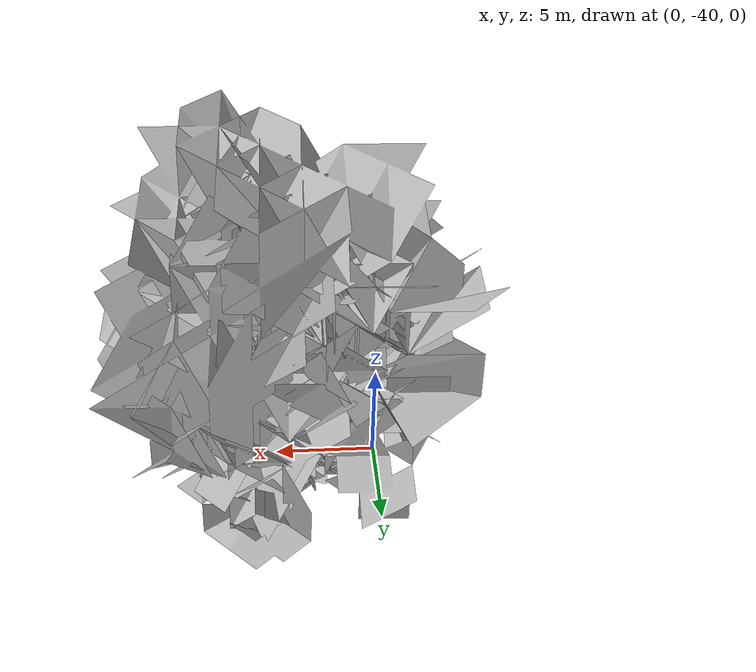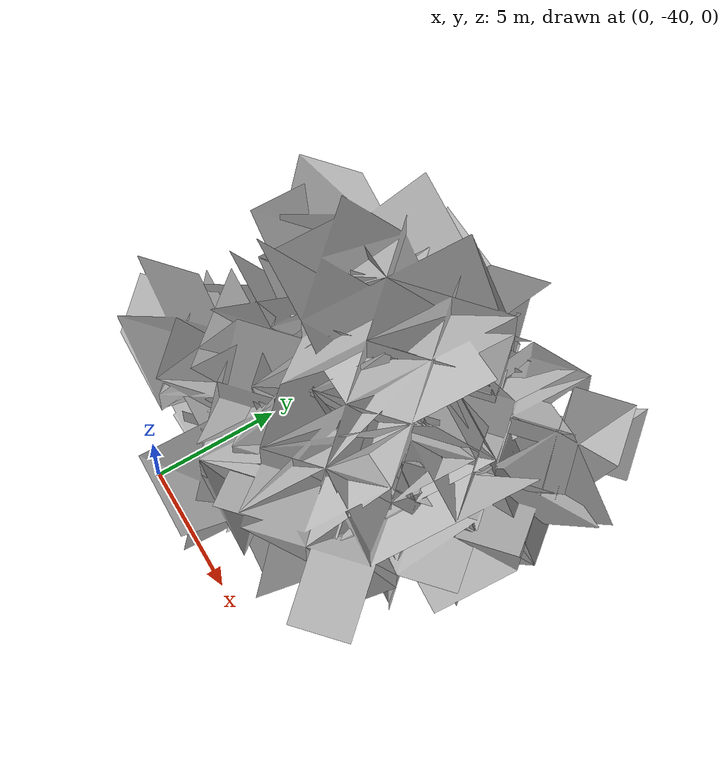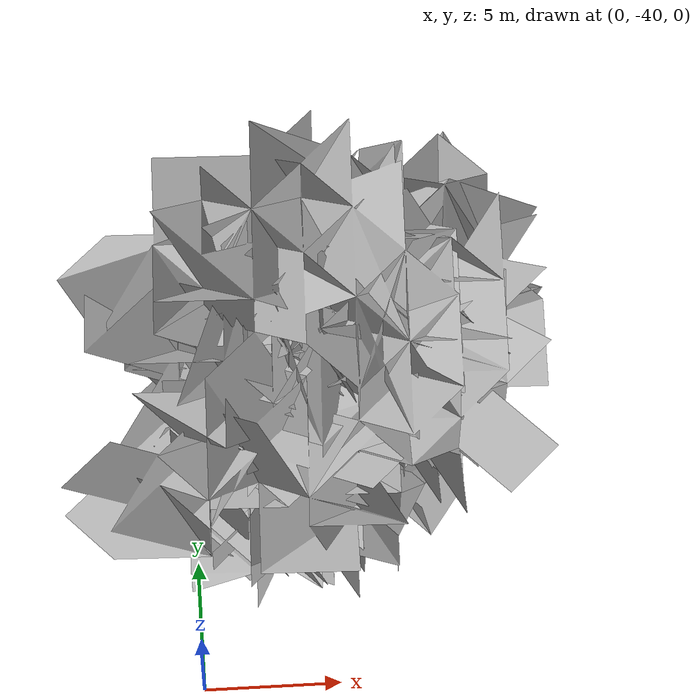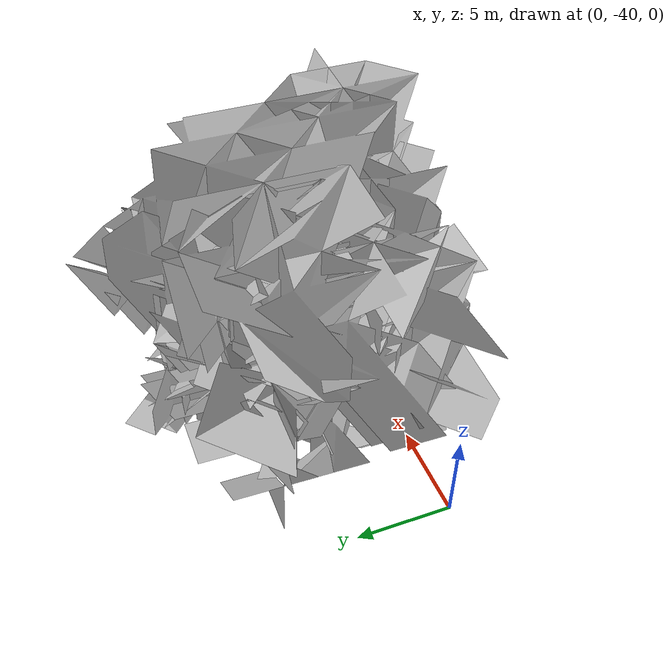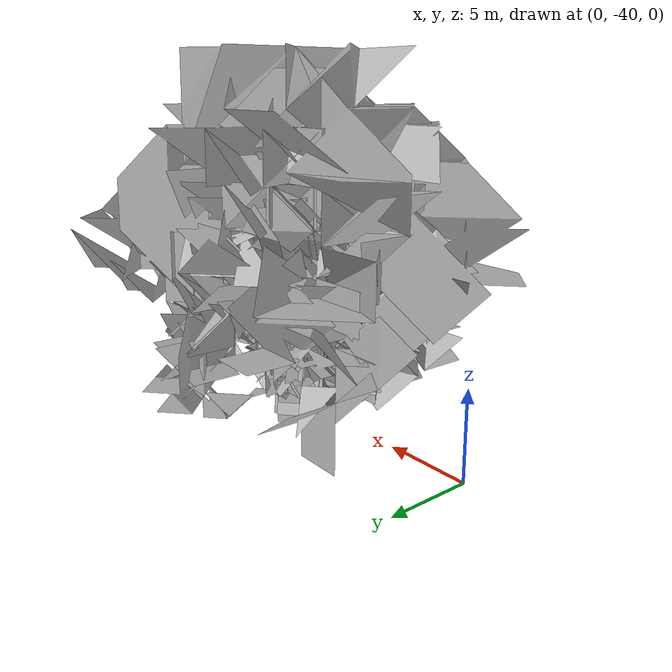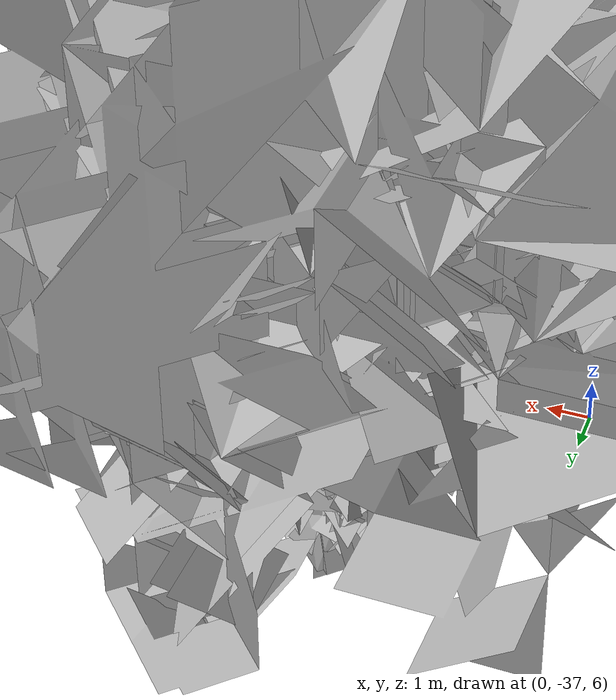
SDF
<sdf version="1.6">
 <world name="default">
  <plugin name="ros_interface_plugin" filename="librotors_gazebo_ros_interface_plugin.so"/>
  <light name="sun" type="directional">
   <pose>0 0 10 0 -0 0</pose>
   <diffuse>0.8 0.8 0.8 1</diffuse>
   <specular>0.1 0.1 0.1 1</specular>
   <attenuation>
    <range>1000</range>
    <constant>0.9</constant>
    <linear>0.01</linear>
    <quadratic>0.001</quadratic>
   </attenuation>
   <direction>-0.5 0.5 -1</direction>
  </light>
  <scene>
   <sky><clouds><speed>12</speed></clouds></sky>
   <ambient>0.4 0.4 0.4 1</ambient>
   <background>0.7 0.7 0.7 1</background>
   <shadows>1</shadows>
  </scene>
  <spherical_coordinates>
   <surface_model>EARTH_WGS84</surface_model>
   <latitude_deg>47.3667</latitude_deg>
   <longitude_deg>8.55</longitude_deg>
   <elevation>500</elevation>
   <heading_deg>0</heading_deg>
  </spherical_coordinates>
  <physics name="default_physics" default="0" type="ode">
   <ode>
    <solver>
     <type>quick</type>
     <iters>1000</iters>
     <sor>1.3</sor>
     <use_dynamic_moi_rescaling>0</use_dynamic_moi_rescaling>
    </solver>
    <constraints>
     <cfm>0</cfm>
     <erp>0.2</erp>
     <contact_max_correcting_vel>100</contact_max_correcting_vel>
     <contact_surface_layer>0.001</contact_surface_layer>
    </constraints>
   </ode>
   <max_step_size>0.002</max_step_size>
   <real_time_factor>1</real_time_factor>
   <real_time_update_rate>500</real_time_update_rate>
  </physics>
  <gravity>0 0 -9.8</gravity>
  <magnetic_field>6e-06 2.3e-05 -4.2e-05</magnetic_field>
  <atmosphere type="adiabatic"/>
  <model name="my_mesh">
   <pose>4.48096 -33.2827 4.37453 0 0 -0.813455</pose>
   <static>1</static>
   <link name="body">
    <visual name="visual">
     <geometry><mesh><uri>model://trees/8.dae</uri><scale>1 1 1</scale></mesh></geometry>
    </visual>
    <collision name="collision">
     <geometry><mesh><uri>model://trees/8.dae</uri><scale>1 1 1</scale></mesh></geometry>
    </collision>
   </link>
  </model>
  <model name="my_mesh">
   <pose>4.48096 -33.2827 4.37453 0 0 -0.813455</pose>
   <static>1</static>
   <link name="body">
    <visual name="visual">
     <geometry><mesh><uri>model://trees/12.dae</uri><scale>1 1 1</scale></mesh></geometry>
    </visual>
    <collision name="collision">
     <geometry><mesh><uri>model://trees/12.dae</uri><scale>1 1 1</scale></mesh></geometry>
    </collision>
   </link>
  </model>
  <model name="my_mesh">
   <pose>4.48096 -33.2827 4.37453 0 0 -0.813455</pose>
   <static>1</static>
   <link name="body">
    <visual name="visual">
     <geometry><mesh><uri>model://trees/16.dae</uri><scale>1 1 1</scale></mesh></geometry>
    </visual>
    <collision name="collision">
     <geometry><mesh><uri>model://trees/16.dae</uri><scale>1 1 1</scale></mesh></geometry>
    </collision>
   </link>
  </model>
  <model name="my_mesh">
   <pose>4.48096 -33.2827 4.37453 0 0 -0.813455</pose>
   <static>1</static>
   <link name="body">
    <visual name="visual">
     <geometry><mesh><uri>model://trees/11.dae</uri><scale>1 1 1</scale></mesh></geometry>
    </visual>
    <collision name="collision">
     <geometry><mesh><uri>model://trees/11.dae</uri><scale>1 1 1</scale></mesh></geometry>
    </collision>
   </link>
  </model>
  <model name="my_mesh">
   <pose>4.48096 -33.2827 4.37453 0 0 -0.813455</pose>
   <static>1</static>
   <link name="body">
    <visual name="visual">
     <geometry><mesh><uri>model://trees/1.dae</uri><scale>1 1 1</scale></mesh></geometry>
    </visual>
    <collision name="collision">
     <geometry><mesh><uri>model://trees/1.dae</uri><scale>1 1 1</scale></mesh></geometry>
    </collision>
   </link>
  </model>
  <model name="my_mesh">
   <pose>4.48096 -33.2827 4.37453 0 0 -0.813455</pose>
   <static>1</static>
   <link name="body">
    <visual name="visual">
     <geometry><mesh><uri>model://trees/17.dae</uri><scale>1 1 1</scale></mesh></geometry>
    </visual>
    <collision name="collision">
     <geometry><mesh><uri>model://trees/17.dae</uri><scale>1 1 1</scale></mesh></geometry>
    </collision>
   </link>
  </model>
  <model name="my_mesh">
   <pose>4.48096 -33.2827 4.37453 0 0 -0.813455</pose>
   <static>1</static>
   <link name="body">
    <visual name="visual">
     <geometry><mesh><uri>model://trees/15.dae</uri><scale>1 1 1</scale></mesh></geometry>
    </visual>
    <collision name="collision">
     <geometry><mesh><uri>model://trees/15.dae</uri><scale>1 1 1</scale></mesh></geometry>
    </collision>
   </link>
  </model>
  <model name="my_mesh">
   <pose>4.48096 -33.2827 4.37453 0 0 -0.813455</pose>
   <static>1</static>
   <link name="body">
    <visual name="visual">
     <geometry><mesh><uri>model://trees/16.dae</uri><scale>1 1 1</scale></mesh></geometry>
    </visual>
    <collision name="collision">
     <geometry><mesh><uri>model://trees/16.dae</uri><scale>1 1 1</scale></mesh></geometry>
    </collision>
   </link>
  </model>
  <model name="my_mesh">
   <pose>4.48096 -33.2827 4.37453 0 0 -0.813455</pose>
   <static>1</static>
   <link name="body">
    <visual name="visual">
     <geometry><mesh><uri>model://trees/16.dae</uri><scale>1 1 1</scale></mesh></geometry>
    </visual>
    <collision name="collision">
     <geometry><mesh><uri>model://trees/16.dae</uri><scale>1 1 1</scale></mesh></geometry>
    </collision>
   </link>
  </model>
  <model name="my_mesh">
   <pose>4.48096 -33.2827 4.37453 0 0 -0.813455</pose>
   <static>1</static>
   <link name="body">
    <visual name="visual">
     <geometry><mesh><uri>model://trees/12.dae</uri><scale>1 1 1</scale></mesh></geometry>
    </visual>
    <collision name="collision">
     <geometry><mesh><uri>model://trees/12.dae</uri><scale>1 1 1</scale></mesh></geometry>
    </collision>
   </link>
  </model>
  <model name="my_mesh">
   <pose>4.48096 -33.2827 4.37453 0 0 -0.813455</pose>
   <static>1</static>
   <link name="body">
    <visual name="visual">
     <geometry><mesh><uri>model://trees/18.dae</uri><scale>1 1 1</scale></mesh></geometry>
    </visual>
    <collision name="collision">
     <geometry><mesh><uri>model://trees/18.dae</uri><scale>1 1 1</scale></mesh></geometry>
    </collision>
   </link>
  </model>
  <model name="my_mesh">
   <pose>4.48096 -33.2827 4.37453 0 0 -0.813455</pose>
   <static>1</static>
   <link name="body">
    <visual name="visual">
     <geometry><mesh><uri>model://trees/17.dae</uri><scale>1 1 1</scale></mesh></geometry>
    </visual>
    <collision name="collision">
     <geometry><mesh><uri>model://trees/17.dae</uri><scale>1 1 1</scale></mesh></geometry>
    </collision>
   </link>
  </model>
  <model name="my_mesh">
   <pose>4.48096 -33.2827 4.37453 0 0 -0.813455</pose>
   <static>1</static>
   <link name="body">
    <visual name="visual">
     <geometry><mesh><uri>model://trees/4.dae</uri><scale>1 1 1</scale></mesh></geometry>
    </visual>
    <collision name="collision">
     <geometry><mesh><uri>model://trees/4.dae</uri><scale>1 1 1</scale></mesh></geometry>
    </collision>
   </link>
  </model>
  <model name="my_mesh">
   <pose>4.48096 -33.2827 4.37453 0 0 -0.813455</pose>
   <static>1</static>
   <link name="body">
    <visual name="visual">
     <geometry><mesh><uri>model://trees/9.dae</uri><scale>1 1 1</scale></mesh></geometry>
    </visual>
    <collision name="collision">
     <geometry><mesh><uri>model://trees/9.dae</uri><scale>1 1 1</scale></mesh></geometry>
    </collision>
   </link>
  </model>
  <model name="my_mesh">
   <pose>4.48096 -33.2827 4.37453 0 0 -0.813455</pose>
   <static>1</static>
   <link name="body">
    <visual name="visual">
     <geometry><mesh><uri>model://trees/0.dae</uri><scale>1 1 1</scale></mesh></geometry>
    </visual>
    <collision name="collision">
     <geometry><mesh><uri>model://trees/0.dae</uri><scale>1 1 1</scale></mesh></geometry>
    </collision>
   </link>
  </model>
  <model name="my_mesh">
   <pose>4.48096 -33.2827 4.37453 0 0 -0.813455</pose>
   <static>1</static>
   <link name="body">
    <visual name="visual">
     <geometry><mesh><uri>model://trees/14.dae</uri><scale>1 1 1</scale></mesh></geometry>
    </visual>
    <collision name="collision">
     <geometry><mesh><uri>model://trees/14.dae</uri><scale>1 1 1</scale></mesh></geometry>
    </collision>
   </link>
  </model>
  <model name="my_mesh">
   <pose>4.48096 -33.2827 4.37453 0 0 -0.813455</pose>
   <static>1</static>
   <link name="body">
    <visual name="visual">
     <geometry><mesh><uri>model://trees/18.dae</uri><scale>1 1 1</scale></mesh></geometry>
    </visual>
    <collision name="collision">
     <geometry><mesh><uri>model://trees/18.dae</uri><scale>1 1 1</scale></mesh></geometry>
    </collision>
   </link>
  </model>
  <model name="my_mesh">
   <pose>4.48096 -33.2827 4.37453 0 0 -0.813455</pose>
   <static>1</static>
   <link name="body">
    <visual name="visual">
     <geometry><mesh><uri>model://trees/7.dae</uri><scale>1 1 1</scale></mesh></geometry>
    </visual>
    <collision name="collision">
     <geometry><mesh><uri>model://trees/7.dae</uri><scale>1 1 1</scale></mesh></geometry>
    </collision>
   </link>
  </model>
  <model name="my_mesh">
   <pose>4.48096 -33.2827 4.37453 0 0 -0.813455</pose>
   <static>1</static>
   <link name="body">
    <visual name="visual">
     <geometry><mesh><uri>model://trees/14.dae</uri><scale>1 1 1</scale></mesh></geometry>
    </visual>
    <collision name="collision">
     <geometry><mesh><uri>model://trees/14.dae</uri><scale>1 1 1</scale></mesh></geometry>
    </collision>
   </link>
  </model>
  <model name="my_mesh">
   <pose>4.48096 -33.2827 4.37453 0 0 -0.813455</pose>
   <static>1</static>
   <link name="body">
    <visual name="visual">
     <geometry><mesh><uri>model://trees/3.dae</uri><scale>1 1 1</scale></mesh></geometry>
    </visual>
    <collision name="collision">
     <geometry><mesh><uri>model://trees/3.dae</uri><scale>1 1 1</scale></mesh></geometry>
    </collision>
   </link>
  </model>
  <model name="my_mesh">
   <pose>4.48096 -33.2827 4.37453 0 0 -0.813455</pose>
   <static>1</static>
   <link name="body">
    <visual name="visual">
     <geometry><mesh><uri>model://trees/13.dae</uri><scale>1 1 1</scale></mesh></geometry>
    </visual>
    <collision name="collision">
     <geometry><mesh><uri>model://trees/13.dae</uri><scale>1 1 1</scale></mesh></geometry>
    </collision>
   </link>
  </model>
  <model name="my_mesh">
   <pose>4.48096 -33.2827 4.37453 0 0 -0.813455</pose>
   <static>1</static>
   <link name="body">
    <visual name="visual">
     <geometry><mesh><uri>model://trees/13.dae</uri><scale>1 1 1</scale></mesh></geometry>
    </visual>
    <collision name="collision">
     <geometry><mesh><uri>model://trees/13.dae</uri><scale>1 1 1</scale></mesh></geometry>
    </collision>
   </link>
  </model>
  <model name="my_mesh">
   <pose>4.48096 -33.2827 4.37453 0 0 -0.813455</pose>
   <static>1</static>
   <link name="body">
    <visual name="visual">
     <geometry><mesh><uri>model://trees/11.dae</uri><scale>1 1 1</scale></mesh></geometry>
    </visual>
    <collision name="collision">
     <geometry><mesh><uri>model://trees/11.dae</uri><scale>1 1 1</scale></mesh></geometry>
    </collision>
   </link>
  </model>
  <model name="my_mesh">
   <pose>4.48096 -33.2827 4.37453 0 0 -0.813455</pose>
   <static>1</static>
   <link name="body">
    <visual name="visual">
     <geometry><mesh><uri>model://trees/13.dae</uri><scale>1 1 1</scale></mesh></geometry>
    </visual>
    <collision name="collision">
     <geometry><mesh><uri>model://trees/13.dae</uri><scale>1 1 1</scale></mesh></geometry>
    </collision>
   </link>
  </model>
  <model name="my_mesh">
   <pose>4.48096 -33.2827 4.37453 0 0 -0.813455</pose>
   <static>1</static>
   <link name="body">
    <visual name="visual">
     <geometry><mesh><uri>model://trees/1.dae</uri><scale>1 1 1</scale></mesh></geometry>
    </visual>
    <collision name="collision">
     <geometry><mesh><uri>model://trees/1.dae</uri><scale>1 1 1</scale></mesh></geometry>
    </collision>
   </link>
  </model>
  <model name="my_mesh">
   <pose>4.48096 -33.2827 4.37453 0 0 -0.813455</pose>
   <static>1</static>
   <link name="body">
    <visual name="visual">
     <geometry><mesh><uri>model://trees/10.dae</uri><scale>1 1 1</scale></mesh></geometry>
    </visual>
    <collision name="collision">
     <geometry><mesh><uri>model://trees/10.dae</uri><scale>1 1 1</scale></mesh></geometry>
    </collision>
   </link>
  </model>
  <model name="my_mesh">
   <pose>4.48096 -33.2827 4.37453 0 0 -0.813455</pose>
   <static>1</static>
   <link name="body">
    <visual name="visual">
     <geometry><mesh><uri>model://trees/19.dae</uri><scale>1 1 1</scale></mesh></geometry>
    </visual>
    <collision name="collision">
     <geometry><mesh><uri>model://trees/19.dae</uri><scale>1 1 1</scale></mesh></geometry>
    </collision>
   </link>
  </model>
  <model name="my_mesh">
   <pose>4.48096 -33.2827 4.37453 0 0 -0.813455</pose>
   <static>1</static>
   <link name="body">
    <visual name="visual">
     <geometry><mesh><uri>model://trees/14.dae</uri><scale>1 1 1</scale></mesh></geometry>
    </visual>
    <collision name="collision">
     <geometry><mesh><uri>model://trees/14.dae</uri><scale>1 1 1</scale></mesh></geometry>
    </collision>
   </link>
  </model>
  <model name="my_mesh">
   <pose>4.48096 -33.2827 4.37453 0 0 -0.813455</pose>
   <static>1</static>
   <link name="body">
    <visual name="visual">
     <geometry><mesh><uri>model://trees/3.dae</uri><scale>1 1 1</scale></mesh></geometry>
    </visual>
    <collision name="collision">
     <geometry><mesh><uri>model://trees/3.dae</uri><scale>1 1 1</scale></mesh></geometry>
    </collision>
   </link>
  </model>
  <model name="my_mesh">
   <pose>4.48096 -33.2827 4.37453 0 0 -0.813455</pose>
   <static>1</static>
   <link name="body">
    <visual name="visual">
     <geometry><mesh><uri>model://trees/0.dae</uri><scale>1 1 1</scale></mesh></geometry>
    </visual>
    <collision name="collision">
     <geometry><mesh><uri>model://trees/0.dae</uri><scale>1 1 1</scale></mesh></geometry>
    </collision>
   </link>
  </model>
  <model name="my_mesh">
   <pose>4.48096 -33.2827 4.37453 0 0 -0.813455</pose>
   <static>1</static>
   <link name="body">
    <visual name="visual">
     <geometry><mesh><uri>model://trees/16.dae</uri><scale>1 1 1</scale></mesh></geometry>
    </visual>
    <collision name="collision">
     <geometry><mesh><uri>model://trees/16.dae</uri><scale>1 1 1</scale></mesh></geometry>
    </collision>
   </link>
  </model>
  <model name="my_mesh">
   <pose>4.48096 -33.2827 4.37453 0 0 -0.813455</pose>
   <static>1</static>
   <link name="body">
    <visual name="visual">
     <geometry><mesh><uri>model://trees/0.dae</uri><scale>1 1 1</scale></mesh></geometry>
    </visual>
    <collision name="collision">
     <geometry><mesh><uri>model://trees/0.dae</uri><scale>1 1 1</scale></mesh></geometry>
    </collision>
   </link>
  </model>
  <model name="my_mesh">
   <pose>4.48096 -33.2827 4.37453 0 0 -0.813455</pose>
   <static>1</static>
   <link name="body">
    <visual name="visual">
     <geometry><mesh><uri>model://trees/17.dae</uri><scale>1 1 1</scale></mesh></geometry>
    </visual>
    <collision name="collision">
     <geometry><mesh><uri>model://trees/17.dae</uri><scale>1 1 1</scale></mesh></geometry>
    </collision>
   </link>
  </model>
  <model name="my_mesh">
   <pose>4.48096 -33.2827 4.37453 0 0 -0.813455</pose>
   <static>1</static>
   <link name="body">
    <visual name="visual">
     <geometry><mesh><uri>model://trees/18.dae</uri><scale>1 1 1</scale></mesh></geometry>
    </visual>
    <collision name="collision">
     <geometry><mesh><uri>model://trees/18.dae</uri><scale>1 1 1</scale></mesh></geometry>
    </collision>
   </link>
  </model>
  <model name="my_mesh">
   <pose>4.48096 -33.2827 4.37453 0 0 -0.813455</pose>
   <static>1</static>
   <link name="body">
    <visual name="visual">
     <geometry><mesh><uri>model://trees/17.dae</uri><scale>1 1 1</scale></mesh></geometry>
    </visual>
    <collision name="collision">
     <geometry><mesh><uri>model://trees/17.dae</uri><scale>1 1 1</scale></mesh></geometry>
    </collision>
   </link>
  </model>
  <model name="my_mesh">
   <pose>4.48096 -33.2827 4.37453 0 0 -0.813455</pose>
   <static>1</static>
   <link name="body">
    <visual name="visual">
     <geometry><mesh><uri>model://trees/15.dae</uri><scale>1 1 1</scale></mesh></geometry>
    </visual>
    <collision name="collision">
     <geometry><mesh><uri>model://trees/15.dae</uri><scale>1 1 1</scale></mesh></geometry>
    </collision>
   </link>
  </model>
  <model name="my_mesh">
   <pose>4.48096 -33.2827 4.37453 0 0 -0.813455</pose>
   <static>1</static>
   <link name="body">
    <visual name="visual">
     <geometry><mesh><uri>model://trees/12.dae</uri><scale>1 1 1</scale></mesh></geometry>
    </visual>
    <collision name="collision">
     <geometry><mesh><uri>model://trees/12.dae</uri><scale>1 1 1</scale></mesh></geometry>
    </collision>
   </link>
  </model>
  <model name="my_mesh">
   <pose>4.48096 -33.2827 4.37453 0 0 -0.813455</pose>
   <static>1</static>
   <link name="body">
    <visual name="visual">
     <geometry><mesh><uri>model://trees/17.dae</uri><scale>1 1 1</scale></mesh></geometry>
    </visual>
    <collision name="collision">
     <geometry><mesh><uri>model://trees/17.dae</uri><scale>1 1 1</scale></mesh></geometry>
    </collision>
   </link>
  </model>
  <model name="my_mesh">
   <pose>4.48096 -33.2827 4.37453 0 0 -0.813455</pose>
   <static>1</static>
   <link name="body">
    <visual name="visual">
     <geometry><mesh><uri>model://trees/4.dae</uri><scale>1 1 1</scale></mesh></geometry>
    </visual>
    <collision name="collision">
     <geometry><mesh><uri>model://trees/4.dae</uri><scale>1 1 1</scale></mesh></geometry>
    </collision>
   </link>
  </model>
  <model name="my_mesh">
   <pose>4.48096 -33.2827 4.37453 0 0 -0.813455</pose>
   <static>1</static>
   <link name="body">
    <visual name="visual">
     <geometry><mesh><uri>model://trees/1.dae</uri><scale>1 1 1</scale></mesh></geometry>
    </visual>
    <collision name="collision">
     <geometry><mesh><uri>model://trees/1.dae</uri><scale>1 1 1</scale></mesh></geometry>
    </collision>
   </link>
  </model>
  <model name="my_mesh">
   <pose>4.48096 -33.2827 4.37453 0 0 -0.813455</pose>
   <static>1</static>
   <link name="body">
    <visual name="visual">
     <geometry><mesh><uri>model://trees/10.dae</uri><scale>1 1 1</scale></mesh></geometry>
    </visual>
    <collision name="collision">
     <geometry><mesh><uri>model://trees/10.dae</uri><scale>1 1 1</scale></mesh></geometry>
    </collision>
   </link>
  </model>
  <model name="my_mesh">
   <pose>4.48096 -33.2827 4.37453 0 0 -0.813455</pose>
   <static>1</static>
   <link name="body">
    <visual name="visual">
     <geometry><mesh><uri>model://trees/10.dae</uri><scale>1 1 1</scale></mesh></geometry>
    </visual>
    <collision name="collision">
     <geometry><mesh><uri>model://trees/10.dae</uri><scale>1 1 1</scale></mesh></geometry>
    </collision>
   </link>
  </model>
  <model name="my_mesh">
   <pose>4.48096 -33.2827 4.37453 0 0 -0.813455</pose>
   <static>1</static>
   <link name="body">
    <visual name="visual">
     <geometry><mesh><uri>model://trees/1.dae</uri><scale>1 1 1</scale></mesh></geometry>
    </visual>
    <collision name="collision">
     <geometry><mesh><uri>model://trees/1.dae</uri><scale>1 1 1</scale></mesh></geometry>
    </collision>
   </link>
  </model>
  <model name="my_mesh">
   <pose>4.48096 -33.2827 4.37453 0 0 -0.813455</pose>
   <static>1</static>
   <link name="body">
    <visual name="visual">
     <geometry><mesh><uri>model://trees/16.dae</uri><scale>1 1 1</scale></mesh></geometry>
    </visual>
    <collision name="collision">
     <geometry><mesh><uri>model://trees/16.dae</uri><scale>1 1 1</scale></mesh></geometry>
    </collision>
   </link>
  </model>
  <model name="my_mesh">
   <pose>4.48096 -33.2827 4.37453 0 0 -0.813455</pose>
   <static>1</static>
   <link name="body">
    <visual name="visual">
     <geometry><mesh><uri>model://trees/12.dae</uri><scale>1 1 1</scale></mesh></geometry>
    </visual>
    <collision name="collision">
     <geometry><mesh><uri>model://trees/12.dae</uri><scale>1 1 1</scale></mesh></geometry>
    </collision>
   </link>
  </model>
  <model name="my_mesh">
   <pose>4.48096 -33.2827 4.37453 0 0 -0.813455</pose>
   <static>1</static>
   <link name="body">
    <visual name="visual">
     <geometry><mesh><uri>model://trees/7.dae</uri><scale>1 1 1</scale></mesh></geometry>
    </visual>
    <collision name="collision">
     <geometry><mesh><uri>model://trees/7.dae</uri><scale>1 1 1</scale></mesh></geometry>
    </collision>
   </link>
  </model>
  <model name="my_mesh">
   <pose>4.48096 -33.2827 4.37453 0 0 -0.813455</pose>
   <static>1</static>
   <link name="body">
    <visual name="visual">
     <geometry><mesh><uri>model://trees/17.dae</uri><scale>1 1 1</scale></mesh></geometry>
    </visual>
    <collision name="collision">
     <geometry><mesh><uri>model://trees/17.dae</uri><scale>1 1 1</scale></mesh></geometry>
    </collision>
   </link>
  </model>
  <model name="my_mesh">
   <pose>4.48096 -33.2827 4.37453 0 0 -0.813455</pose>
   <static>1</static>
   <link name="body">
    <visual name="visual">
     <geometry><mesh><uri>model://trees/18.dae</uri><scale>1 1 1</scale></mesh></geometry>
    </visual>
    <collision name="collision">
     <geometry><mesh><uri>model://trees/18.dae</uri><scale>1 1 1</scale></mesh></geometry>
    </collision>
   </link>
  </model>
  <model name="my_mesh">
   <pose>4.48096 -33.2827 4.37453 0 0 -0.813455</pose>
   <static>1</static>
   <link name="body">
    <visual name="visual">
     <geometry><mesh><uri>model://trees/19.dae</uri><scale>1 1 1</scale></mesh></geometry>
    </visual>
    <collision name="collision">
     <geometry><mesh><uri>model://trees/19.dae</uri><scale>1 1 1</scale></mesh></geometry>
    </collision>
   </link>
  </model>
  <model name="my_mesh">
   <pose>4.48096 -33.2827 4.37453 0 0 -0.813455</pose>
   <static>1</static>
   <link name="body">
    <visual name="visual">
     <geometry><mesh><uri>model://trees/0.dae</uri><scale>1 1 1</scale></mesh></geometry>
    </visual>
    <collision name="collision">
     <geometry><mesh><uri>model://trees/0.dae</uri><scale>1 1 1</scale></mesh></geometry>
    </collision>
   </link>
  </model>
  <model name="my_mesh">
   <pose>4.48096 -33.2827 4.37453 0 0 -0.813455</pose>
   <static>1</static>
   <link name="body">
    <visual name="visual">
     <geometry><mesh><uri>model://trees/18.dae</uri><scale>1 1 1</scale></mesh></geometry>
    </visual>
    <collision name="collision">
     <geometry><mesh><uri>model://trees/18.dae</uri><scale>1 1 1</scale></mesh></geometry>
    </collision>
   </link>
  </model>
  <model name="my_mesh">
   <pose>4.48096 -33.2827 4.37453 0 0 -0.813455</pose>
   <static>1</static>
   <link name="body">
    <visual name="visual">
     <geometry><mesh><uri>model://trees/1.dae</uri><scale>1 1 1</scale></mesh></geometry>
    </visual>
    <collision name="collision">
     <geometry><mesh><uri>model://trees/1.dae</uri><scale>1 1 1</scale></mesh></geometry>
    </collision>
   </link>
  </model>
  <model name="my_mesh">
   <pose>4.48096 -33.2827 4.37453 0 0 -0.813455</pose>
   <static>1</static>
   <link name="body">
    <visual name="visual">
     <geometry><mesh><uri>model://trees/14.dae</uri><scale>1 1 1</scale></mesh></geometry>
    </visual>
    <collision name="collision">
     <geometry><mesh><uri>model://trees/14.dae</uri><scale>1 1 1</scale></mesh></geometry>
    </collision>
   </link>
  </model>
  <model name="my_mesh">
   <pose>4.48096 -33.2827 4.37453 0 0 -0.813455</pose>
   <static>1</static>
   <link name="body">
    <visual name="visual">
     <geometry><mesh><uri>model://trees/7.dae</uri><scale>1 1 1</scale></mesh></geometry>
    </visual>
    <collision name="collision">
     <geometry><mesh><uri>model://trees/7.dae</uri><scale>1 1 1</scale></mesh></geometry>
    </collision>
   </link>
  </model>
  <model name="my_mesh">
   <pose>4.48096 -33.2827 4.37453 0 0 -0.813455</pose>
   <static>1</static>
   <link name="body">
    <visual name="visual">
     <geometry><mesh><uri>model://trees/2.dae</uri><scale>1 1 1</scale></mesh></geometry>
    </visual>
    <collision name="collision">
     <geometry><mesh><uri>model://trees/2.dae</uri><scale>1 1 1</scale></mesh></geometry>
    </collision>
   </link>
  </model>
  <model name="my_mesh">
   <pose>4.48096 -33.2827 4.37453 0 0 -0.813455</pose>
   <static>1</static>
   <link name="body">
    <visual name="visual">
     <geometry><mesh><uri>model://trees/5.dae</uri><scale>1 1 1</scale></mesh></geometry>
    </visual>
    <collision name="collision">
     <geometry><mesh><uri>model://trees/5.dae</uri><scale>1 1 1</scale></mesh></geometry>
    </collision>
   </link>
  </model>
  <model name="my_mesh">
   <pose>4.48096 -33.2827 4.37453 0 0 -0.813455</pose>
   <static>1</static>
   <link name="body">
    <visual name="visual">
     <geometry><mesh><uri>model://trees/17.dae</uri><scale>1 1 1</scale></mesh></geometry>
    </visual>
    <collision name="collision">
     <geometry><mesh><uri>model://trees/17.dae</uri><scale>1 1 1</scale></mesh></geometry>
    </collision>
   </link>
  </model>
  <model name="my_mesh">
   <pose>4.48096 -33.2827 4.37453 0 0 -0.813455</pose>
   <static>1</static>
   <link name="body">
    <visual name="visual">
     <geometry><mesh><uri>model://trees/5.dae</uri><scale>1 1 1</scale></mesh></geometry>
    </visual>
    <collision name="collision">
     <geometry><mesh><uri>model://trees/5.dae</uri><scale>1 1 1</scale></mesh></geometry>
    </collision>
   </link>
  </model>
  <model name="my_mesh">
   <pose>4.48096 -33.2827 4.37453 0 0 -0.813455</pose>
   <static>1</static>
   <link name="body">
    <visual name="visual">
     <geometry><mesh><uri>model://trees/7.dae</uri><scale>1 1 1</scale></mesh></geometry>
    </visual>
    <collision name="collision">
     <geometry><mesh><uri>model://trees/7.dae</uri><scale>1 1 1</scale></mesh></geometry>
    </collision>
   </link>
  </model>
  <model name="my_mesh">
   <pose>4.48096 -33.2827 4.37453 0 0 -0.813455</pose>
   <static>1</static>
   <link name="body">
    <visual name="visual">
     <geometry><mesh><uri>model://trees/3.dae</uri><scale>1 1 1</scale></mesh></geometry>
    </visual>
    <collision name="collision">
     <geometry><mesh><uri>model://trees/3.dae</uri><scale>1 1 1</scale></mesh></geometry>
    </collision>
   </link>
  </model>
  <model name="my_mesh">
   <pose>4.48096 -33.2827 4.37453 0 0 -0.813455</pose>
   <static>1</static>
   <link name="body">
    <visual name="visual">
     <geometry><mesh><uri>model://trees/7.dae</uri><scale>1 1 1</scale></mesh></geometry>
    </visual>
    <collision name="collision">
     <geometry><mesh><uri>model://trees/7.dae</uri><scale>1 1 1</scale></mesh></geometry>
    </collision>
   </link>
  </model>
  <model name="my_mesh">
   <pose>4.48096 -33.2827 4.37453 0 0 -0.813455</pose>
   <static>1</static>
   <link name="body">
    <visual name="visual">
     <geometry><mesh><uri>model://trees/14.dae</uri><scale>1 1 1</scale></mesh></geometry>
    </visual>
    <collision name="collision">
     <geometry><mesh><uri>model://trees/14.dae</uri><scale>1 1 1</scale></mesh></geometry>
    </collision>
   </link>
  </model>
  <model name="my_mesh">
   <pose>4.48096 -33.2827 4.37453 0 0 -0.813455</pose>
   <static>1</static>
   <link name="body">
    <visual name="visual">
     <geometry><mesh><uri>model://trees/1.dae</uri><scale>1 1 1</scale></mesh></geometry>
    </visual>
    <collision name="collision">
     <geometry><mesh><uri>model://trees/1.dae</uri><scale>1 1 1</scale></mesh></geometry>
    </collision>
   </link>
  </model>
  <model name="my_mesh">
   <pose>4.48096 -33.2827 4.37453 0 0 -0.813455</pose>
   <static>1</static>
   <link name="body">
    <visual name="visual">
     <geometry><mesh><uri>model://trees/6.dae</uri><scale>1 1 1</scale></mesh></geometry>
    </visual>
    <collision name="collision">
     <geometry><mesh><uri>model://trees/6.dae</uri><scale>1 1 1</scale></mesh></geometry>
    </collision>
   </link>
  </model>
  <model name="my_mesh">
   <pose>4.48096 -33.2827 4.37453 0 0 -0.813455</pose>
   <static>1</static>
   <link name="body">
    <visual name="visual">
     <geometry><mesh><uri>model://trees/19.dae</uri><scale>1 1 1</scale></mesh></geometry>
    </visual>
    <collision name="collision">
     <geometry><mesh><uri>model://trees/19.dae</uri><scale>1 1 1</scale></mesh></geometry>
    </collision>
   </link>
  </model>
  <model name="my_mesh">
   <pose>4.48096 -33.2827 4.37453 0 0 -0.813455</pose>
   <static>1</static>
   <link name="body">
    <visual name="visual">
     <geometry><mesh><uri>model://trees/10.dae</uri><scale>1 1 1</scale></mesh></geometry>
    </visual>
    <collision name="collision">
     <geometry><mesh><uri>model://trees/10.dae</uri><scale>1 1 1</scale></mesh></geometry>
    </collision>
   </link>
  </model>
  <model name="my_mesh">
   <pose>4.48096 -33.2827 4.37453 0 0 -0.813455</pose>
   <static>1</static>
   <link name="body">
    <visual name="visual">
     <geometry><mesh><uri>model://trees/19.dae</uri><scale>1 1 1</scale></mesh></geometry>
    </visual>
    <collision name="collision">
     <geometry><mesh><uri>model://trees/19.dae</uri><scale>1 1 1</scale></mesh></geometry>
    </collision>
   </link>
  </model>
  <model name="my_mesh">
   <pose>4.48096 -33.2827 4.37453 0 0 -0.813455</pose>
   <static>1</static>
   <link name="body">
    <visual name="visual">
     <geometry><mesh><uri>model://trees/3.dae</uri><scale>1 1 1</scale></mesh></geometry>
    </visual>
    <collision name="collision">
     <geometry><mesh><uri>model://trees/3.dae</uri><scale>1 1 1</scale></mesh></geometry>
    </collision>
   </link>
  </model>
  <model name="my_mesh">
   <pose>4.48096 -33.2827 4.37453 0 0 -0.813455</pose>
   <static>1</static>
   <link name="body">
    <visual name="visual">
     <geometry><mesh><uri>model://trees/16.dae</uri><scale>1 1 1</scale></mesh></geometry>
    </visual>
    <collision name="collision">
     <geometry><mesh><uri>model://trees/16.dae</uri><scale>1 1 1</scale></mesh></geometry>
    </collision>
   </link>
  </model>
  <model name="my_mesh">
   <pose>4.48096 -33.2827 4.37453 0 0 -0.813455</pose>
   <static>1</static>
   <link name="body">
    <visual name="visual">
     <geometry><mesh><uri>model://trees/12.dae</uri><scale>1 1 1</scale></mesh></geometry>
    </visual>
    <collision name="collision">
     <geometry><mesh><uri>model://trees/12.dae</uri><scale>1 1 1</scale></mesh></geometry>
    </collision>
   </link>
  </model>
  <model name="my_mesh">
   <pose>4.48096 -33.2827 4.37453 0 0 -0.813455</pose>
   <static>1</static>
   <link name="body">
    <visual name="visual">
     <geometry><mesh><uri>model://trees/6.dae</uri><scale>1 1 1</scale></mesh></geometry>
    </visual>
    <collision name="collision">
     <geometry><mesh><uri>model://trees/6.dae</uri><scale>1 1 1</scale></mesh></geometry>
    </collision>
   </link>
  </model>
  <model name="my_mesh">
   <pose>4.48096 -33.2827 4.37453 0 0 -0.813455</pose>
   <static>1</static>
   <link name="body">
    <visual name="visual">
     <geometry><mesh><uri>model://trees/15.dae</uri><scale>1 1 1</scale></mesh></geometry>
    </visual>
    <collision name="collision">
     <geometry><mesh><uri>model://trees/15.dae</uri><scale>1 1 1</scale></mesh></geometry>
    </collision>
   </link>
  </model>
  <model name="my_mesh">
   <pose>4.48096 -33.2827 4.37453 0 0 -0.813455</pose>
   <static>1</static>
   <link name="body">
    <visual name="visual">
     <geometry><mesh><uri>model://trees/18.dae</uri><scale>1 1 1</scale></mesh></geometry>
    </visual>
    <collision name="collision">
     <geometry><mesh><uri>model://trees/18.dae</uri><scale>1 1 1</scale></mesh></geometry>
    </collision>
   </link>
  </model>
  <model name="my_mesh">
   <pose>4.48096 -33.2827 4.37453 0 0 -0.813455</pose>
   <static>1</static>
   <link name="body">
    <visual name="visual">
     <geometry><mesh><uri>model://trees/19.dae</uri><scale>1 1 1</scale></mesh></geometry>
    </visual>
    <collision name="collision">
     <geometry><mesh><uri>model://trees/19.dae</uri><scale>1 1 1</scale></mesh></geometry>
    </collision>
   </link>
  </model>
  <model name="my_mesh">
   <pose>4.48096 -33.2827 4.37453 0 0 -0.813455</pose>
   <static>1</static>
   <link name="body">
    <visual name="visual">
     <geometry><mesh><uri>model://trees/9.dae</uri><scale>1 1 1</scale></mesh></geometry>
    </visual>
    <collision name="collision">
     <geometry><mesh><uri>model://trees/9.dae</uri><scale>1 1 1</scale></mesh></geometry>
    </collision>
   </link>
  </model>
  <model name="my_mesh">
   <pose>4.48096 -33.2827 4.37453 0 0 -0.813455</pose>
   <static>1</static>
   <link name="body">
    <visual name="visual">
     <geometry><mesh><uri>model://trees/17.dae</uri><scale>1 1 1</scale></mesh></geometry>
    </visual>
    <collision name="collision">
     <geometry><mesh><uri>model://trees/17.dae</uri><scale>1 1 1</scale></mesh></geometry>
    </collision>
   </link>
  </model>
  <model name="my_mesh">
   <pose>4.48096 -33.2827 4.37453 0 0 -0.813455</pose>
   <static>1</static>
   <link name="body">
    <visual name="visual">
     <geometry><mesh><uri>model://trees/12.dae</uri><scale>1 1 1</scale></mesh></geometry>
    </visual>
    <collision name="collision">
     <geometry><mesh><uri>model://trees/12.dae</uri><scale>1 1 1</scale></mesh></geometry>
    </collision>
   </link>
  </model>
  <model name="my_mesh">
   <pose>4.48096 -33.2827 4.37453 0 0 -0.813455</pose>
   <static>1</static>
   <link name="body">
    <visual name="visual">
     <geometry><mesh><uri>model://trees/0.dae</uri><scale>1 1 1</scale></mesh></geometry>
    </visual>
    <collision name="collision">
     <geometry><mesh><uri>model://trees/0.dae</uri><scale>1 1 1</scale></mesh></geometry>
    </collision>
   </link>
  </model>
  <model name="my_mesh">
   <pose>4.48096 -33.2827 4.37453 0 0 -0.813455</pose>
   <static>1</static>
   <link name="body">
    <visual name="visual">
     <geometry><mesh><uri>model://trees/14.dae</uri><scale>1 1 1</scale></mesh></geometry>
    </visual>
    <collision name="collision">
     <geometry><mesh><uri>model://trees/14.dae</uri><scale>1 1 1</scale></mesh></geometry>
    </collision>
   </link>
  </model>
  <model name="my_mesh">
   <pose>4.48096 -33.2827 4.37453 0 0 -0.813455</pose>
   <static>1</static>
   <link name="body">
    <visual name="visual">
     <geometry><mesh><uri>model://trees/0.dae</uri><scale>1 1 1</scale></mesh></geometry>
    </visual>
    <collision name="collision">
     <geometry><mesh><uri>model://trees/0.dae</uri><scale>1 1 1</scale></mesh></geometry>
    </collision>
   </link>
  </model>
  <model name="my_mesh">
   <pose>4.48096 -33.2827 4.37453 0 0 -0.813455</pose>
   <static>1</static>
   <link name="body">
    <visual name="visual">
     <geometry><mesh><uri>model://trees/16.dae</uri><scale>1 1 1</scale></mesh></geometry>
    </visual>
    <collision name="collision">
     <geometry><mesh><uri>model://trees/16.dae</uri><scale>1 1 1</scale></mesh></geometry>
    </collision>
   </link>
  </model>
  <model name="my_mesh">
   <pose>4.48096 -33.2827 4.37453 0 0 -0.813455</pose>
   <static>1</static>
   <link name="body">
    <visual name="visual">
     <geometry><mesh><uri>model://trees/6.dae</uri><scale>1 1 1</scale></mesh></geometry>
    </visual>
    <collision name="collision">
     <geometry><mesh><uri>model://trees/6.dae</uri><scale>1 1 1</scale></mesh></geometry>
    </collision>
   </link>
  </model>
  <model name="my_mesh">
   <pose>4.48096 -33.2827 4.37453 0 0 -0.813455</pose>
   <static>1</static>
   <link name="body">
    <visual name="visual">
     <geometry><mesh><uri>model://trees/6.dae</uri><scale>1 1 1</scale></mesh></geometry>
    </visual>
    <collision name="collision">
     <geometry><mesh><uri>model://trees/6.dae</uri><scale>1 1 1</scale></mesh></geometry>
    </collision>
   </link>
  </model>
  <model name="my_mesh">
   <pose>4.48096 -33.2827 4.37453 0 0 -0.813455</pose>
   <static>1</static>
   <link name="body">
    <visual name="visual">
     <geometry><mesh><uri>model://trees/5.dae</uri><scale>1 1 1</scale></mesh></geometry>
    </visual>
    <collision name="collision">
     <geometry><mesh><uri>model://trees/5.dae</uri><scale>1 1 1</scale></mesh></geometry>
    </collision>
   </link>
  </model>
  <model name="my_mesh">
   <pose>4.48096 -33.2827 4.37453 0 0 -0.813455</pose>
   <static>1</static>
   <link name="body">
    <visual name="visual">
     <geometry><mesh><uri>model://trees/0.dae</uri><scale>1 1 1</scale></mesh></geometry>
    </visual>
    <collision name="collision">
     <geometry><mesh><uri>model://trees/0.dae</uri><scale>1 1 1</scale></mesh></geometry>
    </collision>
   </link>
  </model>
  <model name="my_mesh">
   <pose>4.48096 -33.2827 4.37453 0 0 -0.813455</pose>
   <static>1</static>
   <link name="body">
    <visual name="visual">
     <geometry><mesh><uri>model://trees/13.dae</uri><scale>1 1 1</scale></mesh></geometry>
    </visual>
    <collision name="collision">
     <geometry><mesh><uri>model://trees/13.dae</uri><scale>1 1 1</scale></mesh></geometry>
    </collision>
   </link>
  </model>
  <model name="my_mesh">
   <pose>4.48096 -33.2827 4.37453 0 0 -0.813455</pose>
   <static>1</static>
   <link name="body">
    <visual name="visual">
     <geometry><mesh><uri>model://trees/2.dae</uri><scale>1 1 1</scale></mesh></geometry>
    </visual>
    <collision name="collision">
     <geometry><mesh><uri>model://trees/2.dae</uri><scale>1 1 1</scale></mesh></geometry>
    </collision>
   </link>
  </model>
  <model name="my_mesh">
   <pose>4.48096 -33.2827 4.37453 0 0 -0.813455</pose>
   <static>1</static>
   <link name="body">
    <visual name="visual">
     <geometry><mesh><uri>model://trees/9.dae</uri><scale>1 1 1</scale></mesh></geometry>
    </visual>
    <collision name="collision">
     <geometry><mesh><uri>model://trees/9.dae</uri><scale>1 1 1</scale></mesh></geometry>
    </collision>
   </link>
  </model>
  <model name="my_mesh">
   <pose>4.48096 -33.2827 4.37453 0 0 -0.813455</pose>
   <static>1</static>
   <link name="body">
    <visual name="visual">
     <geometry><mesh><uri>model://trees/12.dae</uri><scale>1 1 1</scale></mesh></geometry>
    </visual>
    <collision name="collision">
     <geometry><mesh><uri>model://trees/12.dae</uri><scale>1 1 1</scale></mesh></geometry>
    </collision>
   </link>
  </model>
  <model name="my_mesh">
   <pose>4.48096 -33.2827 4.37453 0 0 -0.813455</pose>
   <static>1</static>
   <link name="body">
    <visual name="visual">
     <geometry><mesh><uri>model://trees/15.dae</uri><scale>1 1 1</scale></mesh></geometry>
    </visual>
    <collision name="collision">
     <geometry><mesh><uri>model://trees/15.dae</uri><scale>1 1 1</scale></mesh></geometry>
    </collision>
   </link>
  </model>
  <model name="my_mesh">
   <pose>4.48096 -33.2827 4.37453 0 0 -0.813455</pose>
   <static>1</static>
   <link name="body">
    <visual name="visual">
     <geometry><mesh><uri>model://trees/12.dae</uri><scale>1 1 1</scale></mesh></geometry>
    </visual>
    <collision name="collision">
     <geometry><mesh><uri>model://trees/12.dae</uri><scale>1 1 1</scale></mesh></geometry>
    </collision>
   </link>
  </model>
  <model name="my_mesh">
   <pose>4.48096 -33.2827 4.37453 0 0 -0.813455</pose>
   <static>1</static>
   <link name="body">
    <visual name="visual">
     <geometry><mesh><uri>model://trees/14.dae</uri><scale>1 1 1</scale></mesh></geometry>
    </visual>
    <collision name="collision">
     <geometry><mesh><uri>model://trees/14.dae</uri><scale>1 1 1</scale></mesh></geometry>
    </collision>
   </link>
  </model>
  <model name="my_mesh">
   <pose>4.48096 -33.2827 4.37453 0 0 -0.813455</pose>
   <static>1</static>
   <link name="body">
    <visual name="visual">
     <geometry><mesh><uri>model://trees/7.dae</uri><scale>1 1 1</scale></mesh></geometry>
    </visual>
    <collision name="collision">
     <geometry><mesh><uri>model://trees/7.dae</uri><scale>1 1 1</scale></mesh></geometry>
    </collision>
   </link>
  </model>
  <model name="my_mesh">
   <pose>4.48096 -33.2827 4.37453 0 0 -0.813455</pose>
   <static>1</static>
   <link name="body">
    <visual name="visual">
     <geometry><mesh><uri>model://trees/5.dae</uri><scale>1 1 1</scale></mesh></geometry>
    </visual>
    <collision name="collision">
     <geometry><mesh><uri>model://trees/5.dae</uri><scale>1 1 1</scale></mesh></geometry>
    </collision>
   </link>
  </model>
  <model name="my_mesh">
   <pose>4.48096 -33.2827 4.37453 0 0 -0.813455</pose>
   <static>1</static>
   <link name="body">
    <visual name="visual">
     <geometry><mesh><uri>model://trees/18.dae</uri><scale>1 1 1</scale></mesh></geometry>
    </visual>
    <collision name="collision">
     <geometry><mesh><uri>model://trees/18.dae</uri><scale>1 1 1</scale></mesh></geometry>
    </collision>
   </link>
  </model>
  <model name="my_mesh">
   <pose>4.48096 -33.2827 4.37453 0 0 -0.813455</pose>
   <static>1</static>
   <link name="body">
    <visual name="visual">
     <geometry><mesh><uri>model://trees/3.dae</uri><scale>1 1 1</scale></mesh></geometry>
    </visual>
    <collision name="collision">
     <geometry><mesh><uri>model://trees/3.dae</uri><scale>1 1 1</scale></mesh></geometry>
    </collision>
   </link>
  </model>
  <model name="my_mesh">
   <pose>4.48096 -33.2827 4.37453 0 0 -0.813455</pose>
   <static>1</static>
   <link name="body">
    <visual name="visual">
     <geometry><mesh><uri>model://trees/10.dae</uri><scale>1 1 1</scale></mesh></geometry>
    </visual>
    <collision name="collision">
     <geometry><mesh><uri>model://trees/10.dae</uri><scale>1 1 1</scale></mesh></geometry>
    </collision>
   </link>
  </model>
  <model name="my_mesh">
   <pose>4.48096 -33.2827 4.37453 0 0 -0.813455</pose>
   <static>1</static>
   <link name="body">
    <visual name="visual">
     <geometry><mesh><uri>model://trees/6.dae</uri><scale>1 1 1</scale></mesh></geometry>
    </visual>
    <collision name="collision">
     <geometry><mesh><uri>model://trees/6.dae</uri><scale>1 1 1</scale></mesh></geometry>
    </collision>
   </link>
  </model>
  <model name="my_mesh">
   <pose>4.48096 -33.2827 4.37453 0 0 -0.813455</pose>
   <static>1</static>
   <link name="body">
    <visual name="visual">
     <geometry><mesh><uri>model://trees/11.dae</uri><scale>1 1 1</scale></mesh></geometry>
    </visual>
    <collision name="collision">
     <geometry><mesh><uri>model://trees/11.dae</uri><scale>1 1 1</scale></mesh></geometry>
    </collision>
   </link>
  </model>
 </world>
</sdf>
